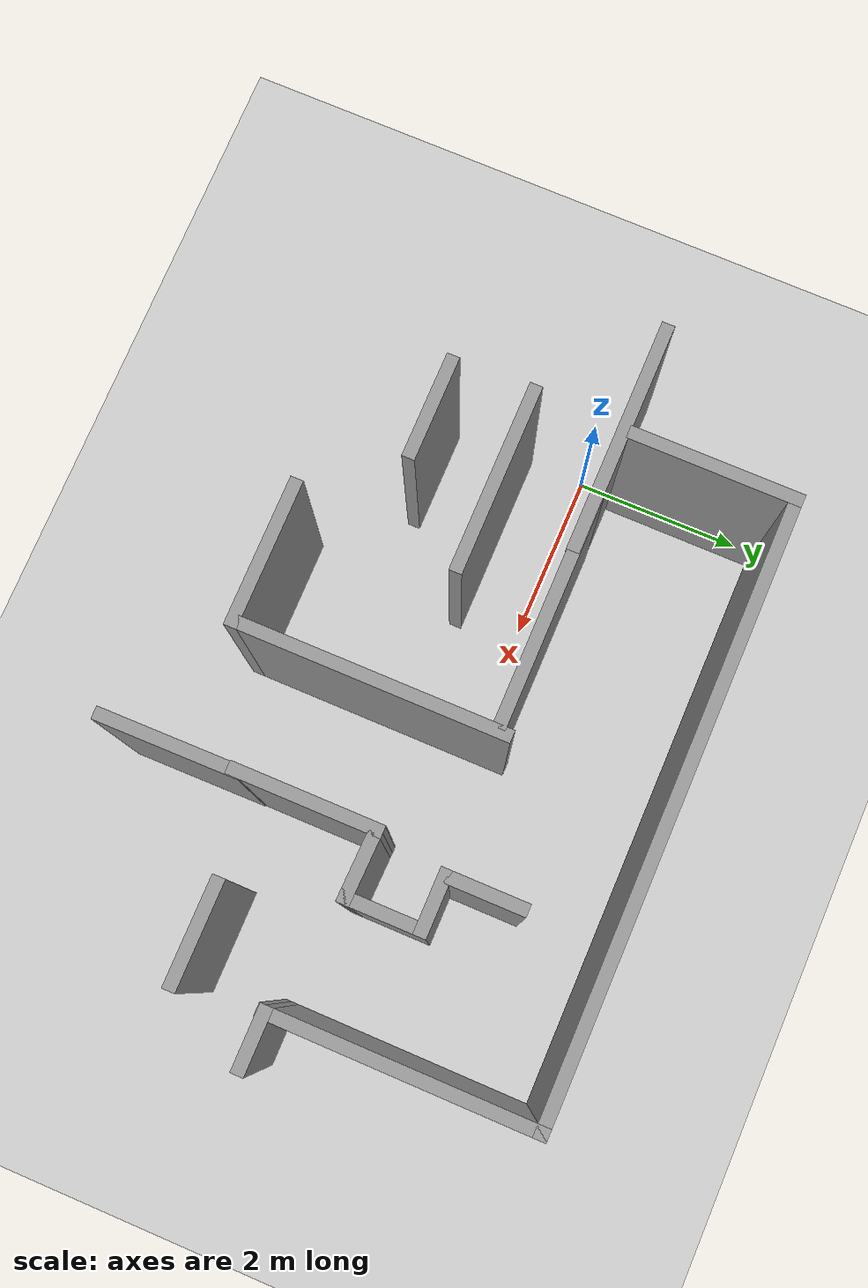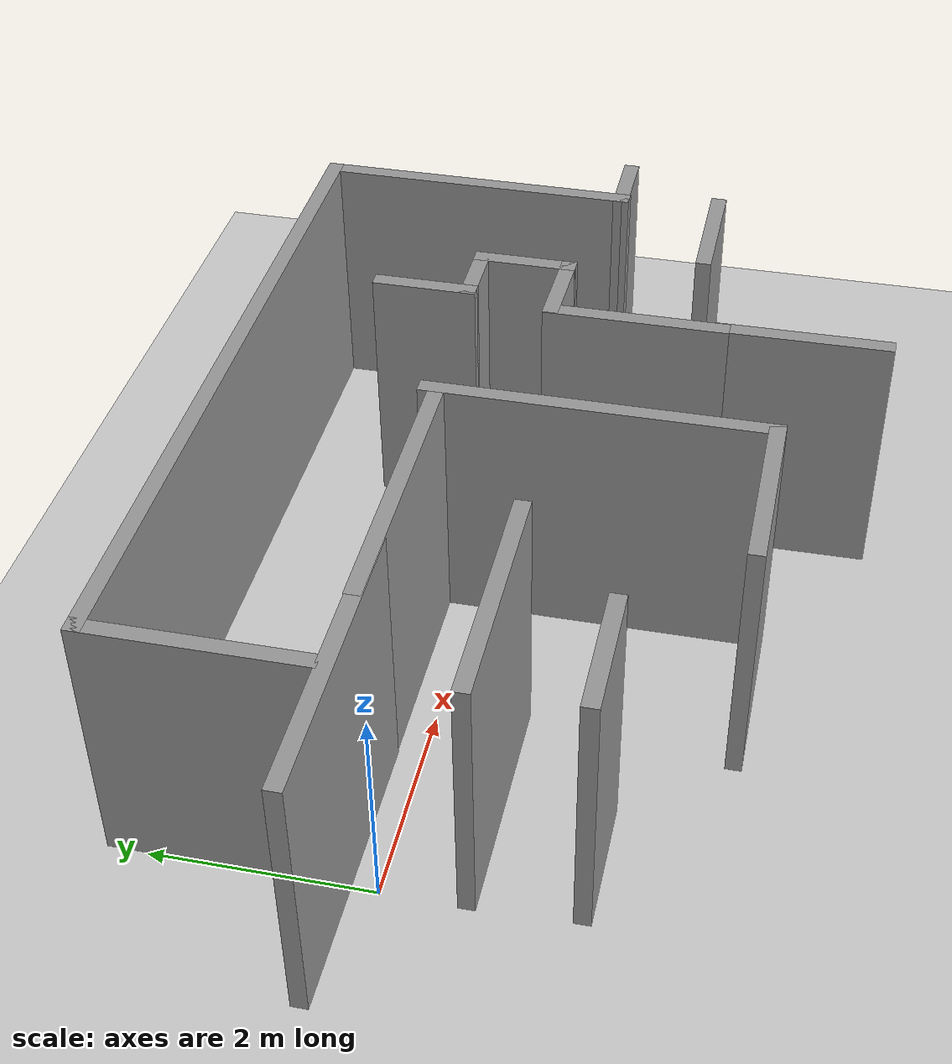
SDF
<sdf version="1.6">
 <world name="default">
  <model name="ground_plane">
   <static>1</static>
   <link name="link">
    <collision name="collision">
     <geometry><plane><normal>0 0 1</normal><size>100 100</size></plane></geometry>
     <surface>
      <contact><collide_bitmask>65535</collide_bitmask></contact>
      <friction><ode><mu>100</mu><mu2>50</mu2></ode></friction>
     </surface>
    </collision>
    <visual name="visual">
     <cast_shadows>0</cast_shadows>
     <geometry><plane><normal>0 0 1</normal><size>100 100</size></plane></geometry>
     <material>
      <script><uri>file://media/materials/scripts/gazebo.material</uri><name>Gazebo/Grey</name></script>
     </material>
    </visual>
   </link>
  </model>
  <model name="enclosed_wall_final">
   <link name="Wall_11">
    <pose>-0.505348 -0.311743 0 0 -0 3.14159</pose>
    <visual name="Wall_11_Visual">
     <pose>0 0 1.25 0 -0 0</pose>
     <geometry><box><size>1.75 0.15 2.5</size></box></geometry>
     <material>
      <script><uri>file://media/materials/scripts/gazebo.material</uri><name>Gazebo/Grey</name></script>
      <ambient>1 1 1 1</ambient>
      <shader type="pixel"/>
     </material>
     <meta><layer>0</layer></meta>
    </visual>
    <collision name="Wall_11_Collision">
     <pose>0 0 1.25 0 -0 0</pose>
     <geometry><box><size>1.75 0.15 2.5</size></box></geometry>
     <surface>
      <friction>
       <ode><mu>1</mu><mu2>1</mu2><fdir1>0 0 0</fdir1><slip1>0</slip1><slip2>0</slip2></ode>
       <torsional>
        <coefficient>1</coefficient>
        <patch_radius>0</patch_radius>
        <surface_radius>0</surface_radius>
        <use_patch_radius>1</use_patch_radius>
        <ode><slip>0</slip></ode>
       </torsional>
      </friction>
      <bounce><restitution_coefficient>0</restitution_coefficient><threshold>1e+06</threshold></bounce>
      <contact>
       <collide_without_contact>0</collide_without_contact>
       <collide_without_contact_bitmask>1</collide_without_contact_bitmask>
       <collide_bitmask>1</collide_bitmask>
       <ode>
        <soft_cfm>0</soft_cfm>
        <soft_erp>0.2</soft_erp>
        <kp>1e+13</kp>
        <kd>1</kd>
        <max_vel>0.01</max_vel>
        <min_depth>0</min_depth>
       </ode>
       <bullet>
        <split_impulse>1</split_impulse>
        <split_impulse_penetration_threshold>-0.01</split_impulse_penetration_threshold>
        <soft_cfm>0</soft_cfm>
        <soft_erp>0.2</soft_erp>
        <kp>1e+13</kp>
        <kd>1</kd>
       </bullet>
      </contact>
     </surface>
    </collision>
   </link>
   <link name="Wall_18">
    <pose>1.73917 -0.407349 0 0 -0 1.57806</pose>
    <visual name="Wall_18_Visual">
     <pose>0 0 1.25 0 -0 0</pose>
     <geometry><box><size>1.65964 0.15 2.5</size></box></geometry>
     <material>
      <script><uri>file://media/materials/scripts/gazebo.material</uri><name>Gazebo/Grey</name></script>
      <ambient>1 1 1 1</ambient>
      <shader type="pixel"/>
     </material>
     <meta><layer>0</layer></meta>
    </visual>
    <collision name="Wall_18_Collision">
     <pose>0 0 1.25 0 -0 0</pose>
     <geometry><box><size>1.65964 0.15 2.5</size></box></geometry>
     <surface>
      <friction>
       <ode><mu>1</mu><mu2>1</mu2><fdir1>0 0 0</fdir1><slip1>0</slip1><slip2>0</slip2></ode>
       <torsional>
        <coefficient>1</coefficient>
        <patch_radius>0</patch_radius>
        <surface_radius>0</surface_radius>
        <use_patch_radius>1</use_patch_radius>
        <ode><slip>0</slip></ode>
       </torsional>
      </friction>
      <bounce><restitution_coefficient>0</restitution_coefficient><threshold>1e+06</threshold></bounce>
      <contact>
       <collide_without_contact>0</collide_without_contact>
       <collide_without_contact_bitmask>1</collide_without_contact_bitmask>
       <collide_bitmask>1</collide_bitmask>
       <ode>
        <soft_cfm>0</soft_cfm>
        <soft_erp>0.2</soft_erp>
        <kp>1e+13</kp>
        <kd>1</kd>
        <max_vel>0.01</max_vel>
        <min_depth>0</min_depth>
       </ode>
       <bullet>
        <split_impulse>1</split_impulse>
        <split_impulse_penetration_threshold>-0.01</split_impulse_penetration_threshold>
        <soft_cfm>0</soft_cfm>
        <soft_erp>0.2</soft_erp>
        <kp>1e+13</kp>
        <kd>1</kd>
       </bullet>
      </contact>
     </surface>
    </collision>
   </link>
   <link name="Wall_24">
    <pose>-3.23714 3.73688 0 0 -0 1.5708</pose>
    <visual name="Wall_24_Visual">
     <pose>0 0 1.25 0 -0 0</pose>
     <geometry><box><size>2 0.15 2.5</size></box></geometry>
     <material>
      <script><uri>file://media/materials/scripts/gazebo.material</uri><name>Gazebo/Grey</name></script>
      <ambient>1 1 1 1</ambient>
      <shader type="pixel"/>
     </material>
     <meta><layer>0</layer></meta>
    </visual>
    <collision name="Wall_24_Collision">
     <pose>0 0 1.25 0 -0 0</pose>
     <geometry><box><size>2 0.15 2.5</size></box></geometry>
     <surface>
      <friction>
       <ode><mu>1</mu><mu2>1</mu2><fdir1>0 0 0</fdir1><slip1>0</slip1><slip2>0</slip2></ode>
       <torsional>
        <coefficient>1</coefficient>
        <patch_radius>0</patch_radius>
        <surface_radius>0</surface_radius>
        <use_patch_radius>1</use_patch_radius>
        <ode><slip>0</slip></ode>
       </torsional>
      </friction>
      <bounce><restitution_coefficient>0</restitution_coefficient><threshold>1e+06</threshold></bounce>
      <contact>
       <collide_without_contact>0</collide_without_contact>
       <collide_without_contact_bitmask>1</collide_without_contact_bitmask>
       <collide_bitmask>1</collide_bitmask>
       <ode>
        <soft_cfm>0</soft_cfm>
        <soft_erp>0.2</soft_erp>
        <kp>1e+13</kp>
        <kd>1</kd>
        <max_vel>0.01</max_vel>
        <min_depth>0</min_depth>
       </ode>
       <bullet>
        <split_impulse>1</split_impulse>
        <split_impulse_penetration_threshold>-0.01</split_impulse_penetration_threshold>
        <soft_cfm>0</soft_cfm>
        <soft_erp>0.2</soft_erp>
        <kp>1e+13</kp>
        <kd>1</kd>
       </bullet>
      </contact>
     </surface>
    </collision>
   </link>
   <link name="Wall_27">
    <pose>0.31286 4.66188 0 0 -0 0</pose>
    <visual name="Wall_27_Visual">
     <pose>0 0 1.25 0 -0 0</pose>
     <geometry><box><size>7.25 0.15 2.5</size></box></geometry>
     <material>
      <script><uri>file://media/materials/scripts/gazebo.material</uri><name>Gazebo/Grey</name></script>
      <ambient>1 1 1 1</ambient>
      <shader type="pixel"/>
     </material>
     <meta><layer>0</layer></meta>
    </visual>
    <collision name="Wall_27_Collision">
     <pose>0 0 1.25 0 -0 0</pose>
     <geometry><box><size>7.25 0.15 2.5</size></box></geometry>
     <surface>
      <friction>
       <ode><mu>1</mu><mu2>1</mu2><fdir1>0 0 0</fdir1><slip1>0</slip1><slip2>0</slip2></ode>
       <torsional>
        <coefficient>1</coefficient>
        <patch_radius>0</patch_radius>
        <surface_radius>0</surface_radius>
        <use_patch_radius>1</use_patch_radius>
        <ode><slip>0</slip></ode>
       </torsional>
      </friction>
      <bounce><restitution_coefficient>0</restitution_coefficient><threshold>1e+06</threshold></bounce>
      <contact>
       <collide_without_contact>0</collide_without_contact>
       <collide_without_contact_bitmask>1</collide_without_contact_bitmask>
       <collide_bitmask>1</collide_bitmask>
       <ode>
        <soft_cfm>0</soft_cfm>
        <soft_erp>0.2</soft_erp>
        <kp>1e+13</kp>
        <kd>1</kd>
        <max_vel>0.01</max_vel>
        <min_depth>0</min_depth>
       </ode>
       <bullet>
        <split_impulse>1</split_impulse>
        <split_impulse_penetration_threshold>-0.01</split_impulse_penetration_threshold>
        <soft_cfm>0</soft_cfm>
        <soft_erp>0.2</soft_erp>
        <kp>1e+13</kp>
        <kd>1</kd>
       </bullet>
      </contact>
     </surface>
    </collision>
   </link>
   <link name="Wall_30">
    <pose>3.41204 0.657822 0 0 -0 0</pose>
    <visual name="Wall_30_Visual">
     <pose>0 0 1.25 0 -0 0</pose>
     <geometry><box><size>1.25 0.15 2.5</size></box></geometry>
     <material>
      <script><uri>file://media/materials/scripts/gazebo.material</uri><name>Gazebo/Grey</name></script>
      <ambient>1 1 1 1</ambient>
      <shader type="pixel"/>
     </material>
     <meta><layer>0</layer></meta>
    </visual>
    <collision name="Wall_30_Collision">
     <pose>0 0 1.25 0 -0 0</pose>
     <geometry><box><size>1.25 0.15 2.5</size></box></geometry>
     <surface>
      <friction>
       <ode><mu>1</mu><mu2>1</mu2><fdir1>0 0 0</fdir1><slip1>0</slip1><slip2>0</slip2></ode>
       <torsional>
        <coefficient>1</coefficient>
        <patch_radius>0</patch_radius>
        <surface_radius>0</surface_radius>
        <use_patch_radius>1</use_patch_radius>
        <ode><slip>0</slip></ode>
       </torsional>
      </friction>
      <bounce><restitution_coefficient>0</restitution_coefficient><threshold>1e+06</threshold></bounce>
      <contact>
       <collide_without_contact>0</collide_without_contact>
       <collide_without_contact_bitmask>1</collide_without_contact_bitmask>
       <collide_bitmask>1</collide_bitmask>
       <ode>
        <soft_cfm>0</soft_cfm>
        <soft_erp>0.2</soft_erp>
        <kp>1e+13</kp>
        <kd>1</kd>
        <max_vel>0.01</max_vel>
        <min_depth>0</min_depth>
       </ode>
       <bullet>
        <split_impulse>1</split_impulse>
        <split_impulse_penetration_threshold>-0.01</split_impulse_penetration_threshold>
        <soft_cfm>0</soft_cfm>
        <soft_erp>0.2</soft_erp>
        <kp>1e+13</kp>
        <kd>1</kd>
       </bullet>
      </contact>
     </surface>
    </collision>
   </link>
   <link name="Wall_32">
    <pose>3.85854 3.14359 0 0 0 -1.57364</pose>
    <visual name="Wall_32_Visual">
     <pose>0 0 1.25 0 -0 0</pose>
     <geometry><box><size>3.1866 0.15 2.5</size></box></geometry>
     <material>
      <script><uri>file://media/materials/scripts/gazebo.material</uri><name>Gazebo/Grey</name></script>
      <ambient>1 1 1 1</ambient>
      <shader type="pixel"/>
     </material>
     <meta><layer>0</layer></meta>
    </visual>
    <collision name="Wall_32_Collision">
     <pose>0 0 1.25 0 -0 0</pose>
     <geometry><box><size>3.1866 0.15 2.5</size></box></geometry>
     <surface>
      <friction>
       <ode><mu>1</mu><mu2>1</mu2><fdir1>0 0 0</fdir1><slip1>0</slip1><slip2>0</slip2></ode>
       <torsional>
        <coefficient>1</coefficient>
        <patch_radius>0</patch_radius>
        <surface_radius>0</surface_radius>
        <use_patch_radius>1</use_patch_radius>
        <ode><slip>0</slip></ode>
       </torsional>
      </friction>
      <bounce><restitution_coefficient>0</restitution_coefficient><threshold>1e+06</threshold></bounce>
      <contact>
       <collide_without_contact>0</collide_without_contact>
       <collide_without_contact_bitmask>1</collide_without_contact_bitmask>
       <collide_bitmask>1</collide_bitmask>
       <ode>
        <soft_cfm>0</soft_cfm>
        <soft_erp>0.2</soft_erp>
        <kp>1e+13</kp>
        <kd>1</kd>
        <max_vel>0.01</max_vel>
        <min_depth>0</min_depth>
       </ode>
       <bullet>
        <split_impulse>1</split_impulse>
        <split_impulse_penetration_threshold>-0.01</split_impulse_penetration_threshold>
        <soft_cfm>0</soft_cfm>
        <soft_erp>0.2</soft_erp>
        <kp>1e+13</kp>
        <kd>1</kd>
       </bullet>
      </contact>
     </surface>
    </collision>
   </link>
   <link name="Wall_33">
    <pose>4.15421 1.63394 0 0 -0 0</pose>
    <visual name="Wall_33_Visual">
     <pose>0 0 1.25 0 -0 0</pose>
     <geometry><box><size>0.75 0.15 2.5</size></box></geometry>
     <material>
      <script><uri>file://media/materials/scripts/gazebo.material</uri><name>Gazebo/Grey</name></script>
      <ambient>1 1 1 1</ambient>
      <shader type="pixel"/>
     </material>
     <meta><layer>0</layer></meta>
    </visual>
    <collision name="Wall_33_Collision">
     <pose>0 0 1.25 0 -0 0</pose>
     <geometry><box><size>0.75 0.15 2.5</size></box></geometry>
     <surface>
      <friction>
       <ode><mu>1</mu><mu2>1</mu2><fdir1>0 0 0</fdir1><slip1>0</slip1><slip2>0</slip2></ode>
       <torsional>
        <coefficient>1</coefficient>
        <patch_radius>0</patch_radius>
        <surface_radius>0</surface_radius>
        <use_patch_radius>1</use_patch_radius>
        <ode><slip>0</slip></ode>
       </torsional>
      </friction>
      <bounce><restitution_coefficient>0</restitution_coefficient><threshold>1e+06</threshold></bounce>
      <contact>
       <collide_without_contact>0</collide_without_contact>
       <collide_without_contact_bitmask>1</collide_without_contact_bitmask>
       <collide_bitmask>1</collide_bitmask>
       <ode>
        <soft_cfm>0</soft_cfm>
        <soft_erp>0.2</soft_erp>
        <kp>1e+13</kp>
        <kd>1</kd>
        <max_vel>0.01</max_vel>
        <min_depth>0</min_depth>
       </ode>
       <bullet>
        <split_impulse>1</split_impulse>
        <split_impulse_penetration_threshold>-0.01</split_impulse_penetration_threshold>
        <soft_cfm>0</soft_cfm>
        <soft_erp>0.2</soft_erp>
        <kp>1e+13</kp>
        <kd>1</kd>
       </bullet>
      </contact>
     </surface>
    </collision>
   </link>
   <link name="Wall_4">
    <pose>-2.21449 1.63239 0 0 -0 0</pose>
    <visual name="Wall_4_Visual">
     <pose>0 0 1.25 0 -0 0</pose>
     <geometry><box><size>2.25 0.15 2.5</size></box></geometry>
     <material>
      <script><uri>file://media/materials/scripts/gazebo.material</uri><name>Gazebo/Grey</name></script>
      <ambient>1 1 1 1</ambient>
      <shader type="pixel"/>
     </material>
     <meta><layer>0</layer></meta>
    </visual>
    <collision name="Wall_4_Collision">
     <pose>0 0 1.25 0 -0 0</pose>
     <geometry><box><size>2.25 0.15 2.5</size></box></geometry>
     <surface>
      <friction>
       <ode><mu>1</mu><mu2>1</mu2><fdir1>0 0 0</fdir1><slip1>0</slip1><slip2>0</slip2></ode>
       <torsional>
        <coefficient>1</coefficient>
        <patch_radius>0</patch_radius>
        <surface_radius>0</surface_radius>
        <use_patch_radius>1</use_patch_radius>
        <ode><slip>0</slip></ode>
       </torsional>
      </friction>
      <bounce><restitution_coefficient>0</restitution_coefficient><threshold>1e+06</threshold></bounce>
      <contact>
       <collide_without_contact>0</collide_without_contact>
       <collide_without_contact_bitmask>1</collide_without_contact_bitmask>
       <collide_bitmask>1</collide_bitmask>
       <ode>
        <soft_cfm>0</soft_cfm>
        <soft_erp>0.2</soft_erp>
        <kp>1e+13</kp>
        <kd>1</kd>
        <max_vel>0.01</max_vel>
        <min_depth>0</min_depth>
       </ode>
       <bullet>
        <split_impulse>1</split_impulse>
        <split_impulse_penetration_threshold>-0.01</split_impulse_penetration_threshold>
        <soft_cfm>0</soft_cfm>
        <soft_erp>0.2</soft_erp>
        <kp>1e+13</kp>
        <kd>1</kd>
       </bullet>
      </contact>
     </surface>
    </collision>
   </link>
   <link name="Wall_45">
    <pose>-2.67182 0.682519 0 0 -0 0</pose>
    <visual name="Wall_45_Visual">
     <pose>0 0 1.25 0 -0 0</pose>
     <geometry><box><size>1.25 0.15 2.5</size></box></geometry>
     <material>
      <script><uri>file://media/materials/scripts/gazebo.material</uri><name>Gazebo/Grey</name></script>
      <ambient>1 1 1 1</ambient>
      <shader type="pixel"/>
     </material>
     <meta><layer>0</layer></meta>
    </visual>
    <collision name="Wall_45_Collision">
     <pose>0 0 1.25 0 -0 0</pose>
     <geometry><box><size>1.25 0.15 2.5</size></box></geometry>
     <surface>
      <friction>
       <ode><mu>1</mu><mu2>1</mu2><fdir1>0 0 0</fdir1><slip1>0</slip1><slip2>0</slip2></ode>
       <torsional>
        <coefficient>1</coefficient>
        <patch_radius>0</patch_radius>
        <surface_radius>0</surface_radius>
        <use_patch_radius>1</use_patch_radius>
        <ode><slip>0</slip></ode>
       </torsional>
      </friction>
      <bounce><restitution_coefficient>0</restitution_coefficient><threshold>1e+06</threshold></bounce>
      <contact>
       <collide_without_contact>0</collide_without_contact>
       <collide_without_contact_bitmask>1</collide_without_contact_bitmask>
       <collide_bitmask>1</collide_bitmask>
       <ode>
        <soft_cfm>0</soft_cfm>
        <soft_erp>0.2</soft_erp>
        <kp>1e+13</kp>
        <kd>1</kd>
        <max_vel>0.01</max_vel>
        <min_depth>0</min_depth>
       </ode>
       <bullet>
        <split_impulse>1</split_impulse>
        <split_impulse_penetration_threshold>-0.01</split_impulse_penetration_threshold>
        <soft_cfm>0</soft_cfm>
        <soft_erp>0.2</soft_erp>
        <kp>1e+13</kp>
        <kd>1</kd>
       </bullet>
      </contact>
     </surface>
    </collision>
   </link>
   <link name="Wall_51">
    <pose>-3.15421 2.68564 0 0 -0 0</pose>
    <visual name="Wall_51_Visual">
     <pose>0 0 1.25 0 -0 0</pose>
     <geometry><box><size>2.75 0.15 2.5</size></box></geometry>
     <material>
      <script><uri>file://media/materials/scripts/gazebo.material</uri><name>Gazebo/Grey</name></script>
      <ambient>1 1 1 1</ambient>
      <shader type="pixel"/>
     </material>
     <meta><layer>0</layer></meta>
    </visual>
    <collision name="Wall_51_Collision">
     <pose>0 0 1.25 0 -0 0</pose>
     <geometry><box><size>2.75 0.15 2.5</size></box></geometry>
     <surface>
      <friction>
       <ode><mu>1</mu><mu2>1</mu2><fdir1>0 0 0</fdir1><slip1>0</slip1><slip2>0</slip2></ode>
       <torsional>
        <coefficient>1</coefficient>
        <patch_radius>0</patch_radius>
        <surface_radius>0</surface_radius>
        <use_patch_radius>1</use_patch_radius>
        <ode><slip>0</slip></ode>
       </torsional>
      </friction>
      <bounce><restitution_coefficient>0</restitution_coefficient><threshold>1e+06</threshold></bounce>
      <contact>
       <collide_without_contact>0</collide_without_contact>
       <collide_without_contact_bitmask>1</collide_without_contact_bitmask>
       <collide_bitmask>1</collide_bitmask>
       <ode>
        <soft_cfm>0</soft_cfm>
        <soft_erp>0.2</soft_erp>
        <kp>1e+13</kp>
        <kd>1</kd>
        <max_vel>0.01</max_vel>
        <min_depth>0</min_depth>
       </ode>
       <bullet>
        <split_impulse>1</split_impulse>
        <split_impulse_penetration_threshold>-0.01</split_impulse_penetration_threshold>
        <soft_cfm>0</soft_cfm>
        <soft_erp>0.2</soft_erp>
        <kp>1e+13</kp>
        <kd>1</kd>
       </bullet>
      </contact>
     </surface>
    </collision>
   </link>
   <link name="Wall_51_clone">
    <pose>-1.10796 2.69434 0 0 -0 0</pose>
    <visual name="Wall_51_Visual">
     <pose>0 0 1.25 0 -0 0</pose>
     <geometry><box><size>2.75 0.15 2.5</size></box></geometry>
     <material>
      <script><uri>file://media/materials/scripts/gazebo.material</uri><name>Gazebo/Grey</name></script>
      <ambient>1 1 1 1</ambient>
      <shader type="pixel"/>
     </material>
     <meta><layer>0</layer></meta>
    </visual>
    <collision name="Wall_51_Collision">
     <pose>0 0 1.25 0 -0 0</pose>
     <geometry><box><size>2.75 0.15 2.5</size></box></geometry>
     <surface>
      <friction>
       <ode><mu>1</mu><mu2>1</mu2><fdir1>0 0 0</fdir1><slip1>0</slip1><slip2>0</slip2></ode>
       <torsional>
        <coefficient>1</coefficient>
        <patch_radius>0</patch_radius>
        <surface_radius>0</surface_radius>
        <use_patch_radius>1</use_patch_radius>
        <ode><slip>0</slip></ode>
       </torsional>
      </friction>
      <bounce><restitution_coefficient>0</restitution_coefficient><threshold>1e+06</threshold></bounce>
      <contact>
       <collide_without_contact>0</collide_without_contact>
       <collide_without_contact_bitmask>1</collide_without_contact_bitmask>
       <collide_bitmask>1</collide_bitmask>
       <ode>
        <soft_cfm>0</soft_cfm>
        <soft_erp>0.2</soft_erp>
        <kp>1e+13</kp>
        <kd>1</kd>
        <max_vel>0.01</max_vel>
        <min_depth>0</min_depth>
       </ode>
       <bullet>
        <split_impulse>1</split_impulse>
        <split_impulse_penetration_threshold>-0.01</split_impulse_penetration_threshold>
        <soft_cfm>0</soft_cfm>
        <soft_erp>0.2</soft_erp>
        <kp>1e+13</kp>
        <kd>1</kd>
       </bullet>
      </contact>
     </surface>
    </collision>
   </link>
   <link name="Wall_59">
    <pose>1.88408 3.20205 0 0 0 -1.5708</pose>
    <visual name="Wall_59_Visual">
     <pose>0 0 1.25 0 -0 0</pose>
     <geometry><box><size>1 0.15 2.5</size></box></geometry>
     <material>
      <script><uri>file://media/materials/scripts/gazebo.material</uri><name>Gazebo/Grey</name></script>
      <ambient>1 1 1 1</ambient>
      <shader type="pixel"/>
     </material>
     <meta><layer>0</layer></meta>
    </visual>
    <collision name="Wall_59_Collision">
     <pose>0 0 1.25 0 -0 0</pose>
     <geometry><box><size>1 0.15 2.5</size></box></geometry>
     <surface>
      <friction>
       <ode><mu>1</mu><mu2>1</mu2><fdir1>0 0 0</fdir1><slip1>0</slip1><slip2>0</slip2></ode>
       <torsional>
        <coefficient>1</coefficient>
        <patch_radius>0</patch_radius>
        <surface_radius>0</surface_radius>
        <use_patch_radius>1</use_patch_radius>
        <ode><slip>0</slip></ode>
       </torsional>
      </friction>
      <bounce><restitution_coefficient>0</restitution_coefficient><threshold>1e+06</threshold></bounce>
      <contact>
       <collide_without_contact>0</collide_without_contact>
       <collide_without_contact_bitmask>1</collide_without_contact_bitmask>
       <collide_bitmask>1</collide_bitmask>
       <ode>
        <soft_cfm>0</soft_cfm>
        <soft_erp>0.2</soft_erp>
        <kp>1e+13</kp>
        <kd>1</kd>
        <max_vel>0.01</max_vel>
        <min_depth>0</min_depth>
       </ode>
       <bullet>
        <split_impulse>1</split_impulse>
        <split_impulse_penetration_threshold>-0.01</split_impulse_penetration_threshold>
        <soft_cfm>0</soft_cfm>
        <soft_erp>0.2</soft_erp>
        <kp>1e+13</kp>
        <kd>1</kd>
       </bullet>
      </contact>
     </surface>
    </collision>
   </link>
   <link name="Wall_60">
    <pose>2.18408 2.77705 0 0 -0 0</pose>
    <visual name="Wall_60_Visual">
     <pose>0 0 1.25 0 -0 0</pose>
     <geometry><box><size>0.75 0.15 2.5</size></box></geometry>
     <material>
      <script><uri>file://media/materials/scripts/gazebo.material</uri><name>Gazebo/Grey</name></script>
      <ambient>1 1 1 1</ambient>
      <shader type="pixel"/>
     </material>
     <meta><layer>0</layer></meta>
    </visual>
    <collision name="Wall_60_Collision">
     <pose>0 0 1.25 0 -0 0</pose>
     <geometry><box><size>0.75 0.15 2.5</size></box></geometry>
     <surface>
      <friction>
       <ode><mu>1</mu><mu2>1</mu2><fdir1>0 0 0</fdir1><slip1>0</slip1><slip2>0</slip2></ode>
       <torsional>
        <coefficient>1</coefficient>
        <patch_radius>0</patch_radius>
        <surface_radius>0</surface_radius>
        <use_patch_radius>1</use_patch_radius>
        <ode><slip>0</slip></ode>
       </torsional>
      </friction>
      <bounce><restitution_coefficient>0</restitution_coefficient><threshold>1e+06</threshold></bounce>
      <contact>
       <collide_without_contact>0</collide_without_contact>
       <collide_without_contact_bitmask>1</collide_without_contact_bitmask>
       <collide_bitmask>1</collide_bitmask>
       <ode>
        <soft_cfm>0</soft_cfm>
        <soft_erp>0.2</soft_erp>
        <kp>1e+13</kp>
        <kd>1</kd>
        <max_vel>0.01</max_vel>
        <min_depth>0</min_depth>
       </ode>
       <bullet>
        <split_impulse>1</split_impulse>
        <split_impulse_penetration_threshold>-0.01</split_impulse_penetration_threshold>
        <soft_cfm>0</soft_cfm>
        <soft_erp>0.2</soft_erp>
        <kp>1e+13</kp>
        <kd>1</kd>
       </bullet>
      </contact>
     </surface>
    </collision>
   </link>
   <link name="Wall_61">
    <pose>2.48408 2.35204 0 0 0 -1.5708</pose>
    <visual name="Wall_61_Visual">
     <pose>0 0 1.25 0 -0 0</pose>
     <geometry><box><size>1 0.15 2.5</size></box></geometry>
     <material>
      <script><uri>file://media/materials/scripts/gazebo.material</uri><name>Gazebo/Grey</name></script>
      <ambient>1 1 1 1</ambient>
      <shader type="pixel"/>
     </material>
     <meta><layer>0</layer></meta>
    </visual>
    <collision name="Wall_61_Collision">
     <pose>0 0 1.25 0 -0 0</pose>
     <geometry><box><size>1 0.15 2.5</size></box></geometry>
     <surface>
      <friction>
       <ode><mu>1</mu><mu2>1</mu2><fdir1>0 0 0</fdir1><slip1>0</slip1><slip2>0</slip2></ode>
       <torsional>
        <coefficient>1</coefficient>
        <patch_radius>0</patch_radius>
        <surface_radius>0</surface_radius>
        <use_patch_radius>1</use_patch_radius>
        <ode><slip>0</slip></ode>
       </torsional>
      </friction>
      <bounce><restitution_coefficient>0</restitution_coefficient><threshold>1e+06</threshold></bounce>
      <contact>
       <collide_without_contact>0</collide_without_contact>
       <collide_without_contact_bitmask>1</collide_without_contact_bitmask>
       <collide_bitmask>1</collide_bitmask>
       <ode>
        <soft_cfm>0</soft_cfm>
        <soft_erp>0.2</soft_erp>
        <kp>1e+13</kp>
        <kd>1</kd>
        <max_vel>0.01</max_vel>
        <min_depth>0</min_depth>
       </ode>
       <bullet>
        <split_impulse>1</split_impulse>
        <split_impulse_penetration_threshold>-0.01</split_impulse_penetration_threshold>
        <soft_cfm>0</soft_cfm>
        <soft_erp>0.2</soft_erp>
        <kp>1e+13</kp>
        <kd>1</kd>
       </bullet>
      </contact>
     </surface>
    </collision>
   </link>
   <link name="Wall_62">
    <pose>2.10888 1.93704 0 0 -0 3.11495</pose>
    <visual name="Wall_62_Visual">
     <pose>0 0 1.25 0 -0 0</pose>
     <geometry><box><size>0.900662 0.15 2.5</size></box></geometry>
     <material>
      <script><uri>file://media/materials/scripts/gazebo.material</uri><name>Gazebo/Grey</name></script>
      <ambient>1 1 1 1</ambient>
      <shader type="pixel"/>
     </material>
     <meta><layer>0</layer></meta>
    </visual>
    <collision name="Wall_62_Collision">
     <pose>0 0 1.25 0 -0 0</pose>
     <geometry><box><size>0.900662 0.15 2.5</size></box></geometry>
     <surface>
      <friction>
       <ode><mu>1</mu><mu2>1</mu2><fdir1>0 0 0</fdir1><slip1>0</slip1><slip2>0</slip2></ode>
       <torsional>
        <coefficient>1</coefficient>
        <patch_radius>0</patch_radius>
        <surface_radius>0</surface_radius>
        <use_patch_radius>1</use_patch_radius>
        <ode><slip>0</slip></ode>
       </torsional>
      </friction>
      <bounce><restitution_coefficient>0</restitution_coefficient><threshold>1e+06</threshold></bounce>
      <contact>
       <collide_without_contact>0</collide_without_contact>
       <collide_without_contact_bitmask>1</collide_without_contact_bitmask>
       <collide_bitmask>1</collide_bitmask>
       <ode>
        <soft_cfm>0</soft_cfm>
        <soft_erp>0.2</soft_erp>
        <kp>1e+13</kp>
        <kd>1</kd>
        <max_vel>0.01</max_vel>
        <min_depth>0</min_depth>
       </ode>
       <bullet>
        <split_impulse>1</split_impulse>
        <split_impulse_penetration_threshold>-0.01</split_impulse_penetration_threshold>
        <soft_cfm>0</soft_cfm>
        <soft_erp>0.2</soft_erp>
        <kp>1e+13</kp>
        <kd>1</kd>
       </bullet>
      </contact>
     </surface>
    </collision>
   </link>
   <link name="Wall_63">
    <pose>1.72374 1.14705 0 0 0 -1.5708</pose>
    <visual name="Wall_63_Visual">
     <pose>0 0 1.25 0 -0 0</pose>
     <geometry><box><size>1.75 0.15 2.5</size></box></geometry>
     <material>
      <script><uri>file://media/materials/scripts/gazebo.material</uri><name>Gazebo/Grey</name></script>
      <ambient>1 1 1 1</ambient>
      <shader type="pixel"/>
     </material>
     <meta><layer>0</layer></meta>
    </visual>
    <collision name="Wall_63_Collision">
     <pose>0 0 1.25 0 -0 0</pose>
     <geometry><box><size>1.75 0.15 2.5</size></box></geometry>
     <surface>
      <friction>
       <ode><mu>1</mu><mu2>1</mu2><fdir1>0 0 0</fdir1><slip1>0</slip1><slip2>0</slip2></ode>
       <torsional>
        <coefficient>1</coefficient>
        <patch_radius>0</patch_radius>
        <surface_radius>0</surface_radius>
        <use_patch_radius>1</use_patch_radius>
        <ode><slip>0</slip></ode>
       </torsional>
      </friction>
      <bounce><restitution_coefficient>0</restitution_coefficient><threshold>1e+06</threshold></bounce>
      <contact>
       <collide_without_contact>0</collide_without_contact>
       <collide_without_contact_bitmask>1</collide_without_contact_bitmask>
       <collide_bitmask>1</collide_bitmask>
       <ode>
        <soft_cfm>0</soft_cfm>
        <soft_erp>0.2</soft_erp>
        <kp>1e+13</kp>
        <kd>1</kd>
        <max_vel>0.01</max_vel>
        <min_depth>0</min_depth>
       </ode>
       <bullet>
        <split_impulse>1</split_impulse>
        <split_impulse_penetration_threshold>-0.01</split_impulse_penetration_threshold>
        <soft_cfm>0</soft_cfm>
        <soft_erp>0.2</soft_erp>
        <kp>1e+13</kp>
        <kd>1</kd>
       </bullet>
      </contact>
     </surface>
    </collision>
   </link>
   <link name="Wall_7">
    <pose>0.294652 1.23826 0 0 0 -1.5708</pose>
    <visual name="Wall_7_Visual">
     <pose>0 0 1.25 0 -0 0</pose>
     <geometry><box><size>3.25 0.15 2.5</size></box></geometry>
     <material>
      <script><uri>file://media/materials/scripts/gazebo.material</uri><name>Gazebo/Grey</name></script>
      <ambient>1 1 1 1</ambient>
      <shader type="pixel"/>
     </material>
     <meta><layer>0</layer></meta>
    </visual>
    <collision name="Wall_7_Collision">
     <pose>0 0 1.25 0 -0 0</pose>
     <geometry><box><size>3.25 0.15 2.5</size></box></geometry>
     <surface>
      <friction>
       <ode><mu>1</mu><mu2>1</mu2><fdir1>0 0 0</fdir1><slip1>0</slip1><slip2>0</slip2></ode>
       <torsional>
        <coefficient>1</coefficient>
        <patch_radius>0</patch_radius>
        <surface_radius>0</surface_radius>
        <use_patch_radius>1</use_patch_radius>
        <ode><slip>0</slip></ode>
       </torsional>
      </friction>
      <bounce><restitution_coefficient>0</restitution_coefficient><threshold>1e+06</threshold></bounce>
      <contact>
       <collide_without_contact>0</collide_without_contact>
       <collide_without_contact_bitmask>1</collide_without_contact_bitmask>
       <collide_bitmask>1</collide_bitmask>
       <ode>
        <soft_cfm>0</soft_cfm>
        <soft_erp>0.2</soft_erp>
        <kp>1e+13</kp>
        <kd>1</kd>
        <max_vel>0.01</max_vel>
        <min_depth>0</min_depth>
       </ode>
       <bullet>
        <split_impulse>1</split_impulse>
        <split_impulse_penetration_threshold>-0.01</split_impulse_penetration_threshold>
        <soft_cfm>0</soft_cfm>
        <soft_erp>0.2</soft_erp>
        <kp>1e+13</kp>
        <kd>1</kd>
       </bullet>
      </contact>
     </surface>
    </collision>
   </link>
   <static>1</static>
   <pose>3.32683 -2.371 0 0 -0 0</pose>
  </model>
 </world>
</sdf>
